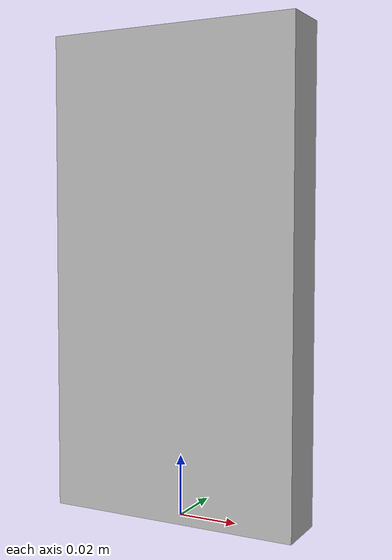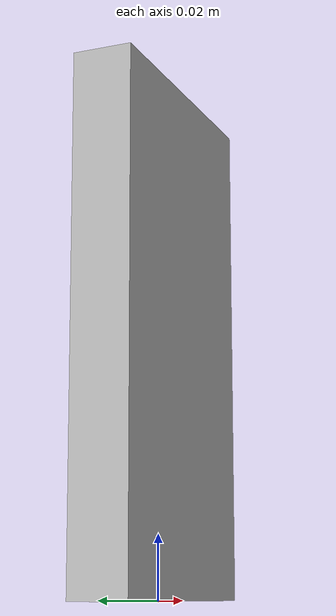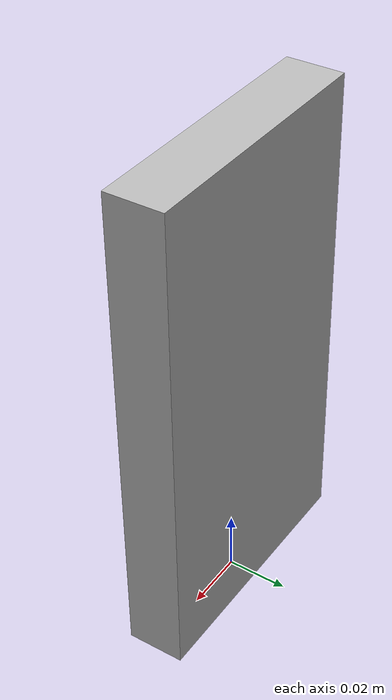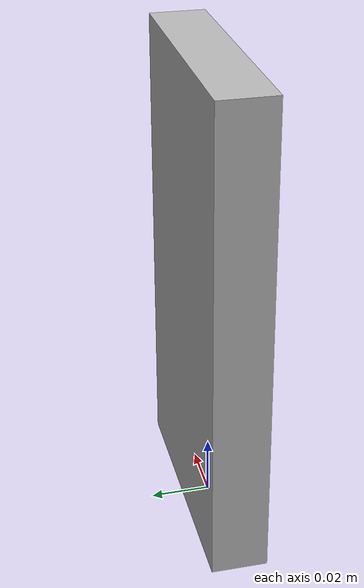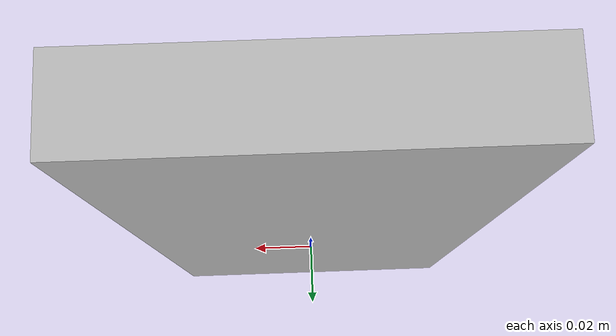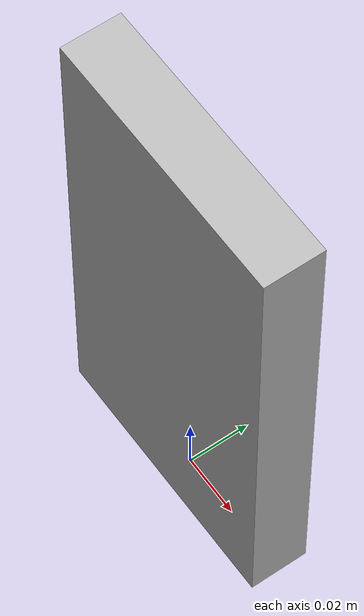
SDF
<?xml version="1.0"?>
<sdf version="1.9">
  <model name="textured_drug_003">
    <static>false</static>
    <self_collide>false</self_collide>
    <link name="body">
      <inertial>
        <pose>0 0 0.080000 0 0 0</pose>
        <mass>0.055844</mass>
        <inertia>
          <ixx>0.00012073</ixx>
          <ixy>0.0</ixy>
          <ixz>0.0</ixz>
          <iyy>0.00015332</iyy>
          <iyz>0.0</iyz>
          <izz>0.00003578</izz>
        </inertia>
      </inertial>
      <collision name="collision">
        <pose>0 0 0.080000 0 0 0</pose>
        <geometry><box><size>0.085704 0.018511 0.160000</size></box></geometry>
        <surface>
          <friction>
            <ode>
              <mu>1.300</mu>
              <mu2>1.300</mu2>
            </ode>
          </friction>
          <contact>
            <ode>
              <kp>120000.0</kp>
              <kd>8.0</kd>
            </ode>
          </contact>
        </surface>
      </collision>
      <visual name="visual">
        <pose>0 0 0.080000 0 0 0</pose>
        <geometry>
          <mesh>
            <uri>meshes/model.obj</uri>
            <scale>1 1.350000 1.000000</scale>
          </mesh>
        </geometry>
      </visual>
    </link>
  </model>
</sdf>
